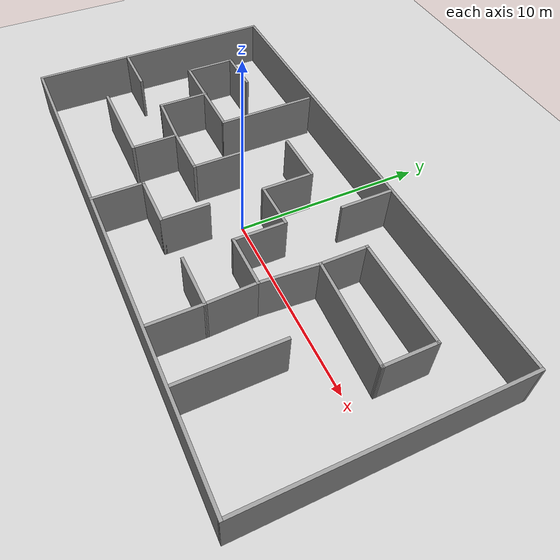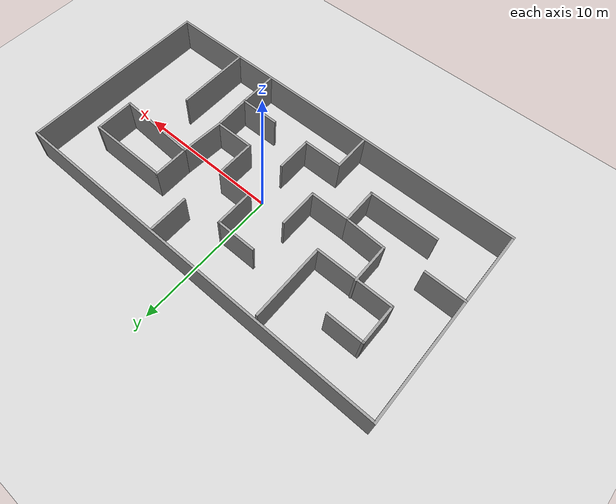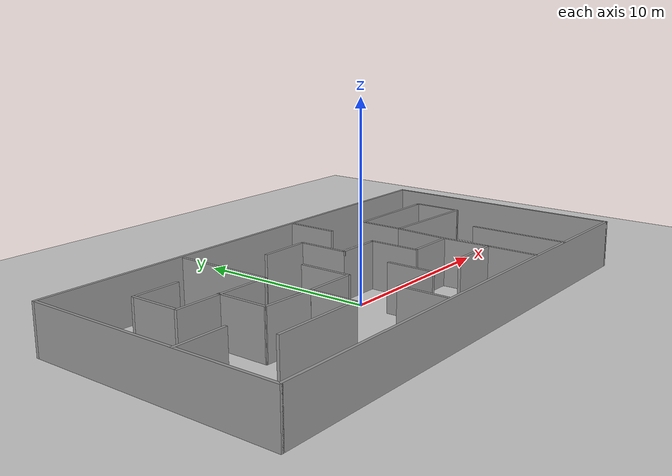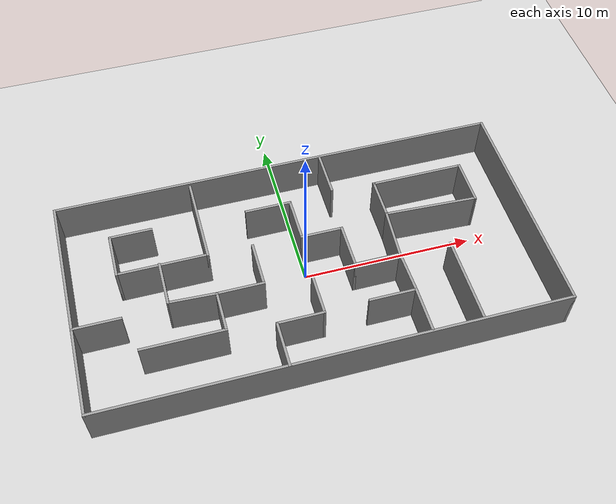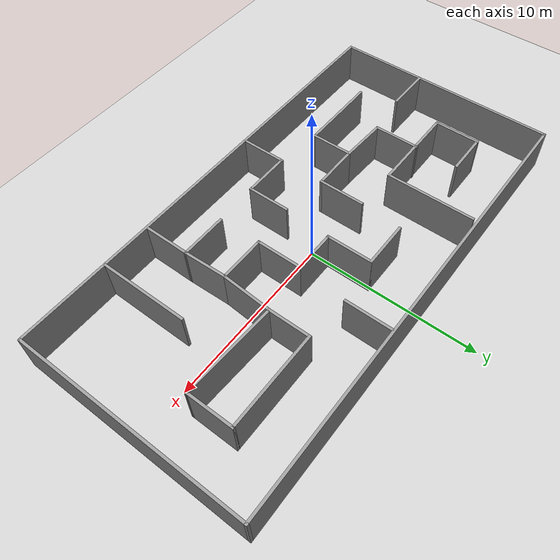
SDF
<?xml version="1.0" ?>

<sdf version="1.6">

  <world name="maze">

    <gravity>0 0 -9.81</gravity>
    <physics name="default_physics" default="0" type="ode">
      <max_step_size>0.005</max_step_size>
      <real_time_factor>0</real_time_factor>
      <real_time_update_rate>0</real_time_update_rate>
    </physics>

    <scene>
      <ambient>0.4 0.4 0.4 1</ambient>
      <background>0.7 0.7 0.7 1</background>
      <shadows>1</shadows>
    </scene>

    <gui>
      <camera name='gzclient_camera'>
        <pose>1.5 -15.5 20 0 0.9 1.6</pose>
      </camera>
    </gui>

    <!-- Light Source -->
    <include>
      <uri>model://sun</uri>
    </include>

    <!-- A ground plane -->
    <include>
      <uri>model://ground_plane</uri>
      <pose>0 0 0 0 0 0</pose>
    </include>

    <include>
      <uri>model://tricky_maze</uri>
      <pose> 0 0 0 0 0 0</pose>
    </include>

  </world>
</sdf>

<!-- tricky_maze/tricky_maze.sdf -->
<sdf version='1.7'>
  <model name='tricky_maze'>
    <pose>0.079074 0.014999 0 0 -0 0</pose>
    <link name='Wall_0'>
      <collision name='Wall_0_Collision'>
        <geometry>
          <box>
            <size>13.5 0.15 2.5</size>
          </box>
        </geometry>
        <pose>0 0 1.25 0 -0 0</pose>
      </collision>
      <visual name='Wall_0_Visual'>
        <pose>0 0 1.25 0 -0 0</pose>
        <geometry>
          <box>
            <size>13.5 0.15 2.5</size>
          </box>
        </geometry>
        <material>
          <script>
            <uri>file://media/materials/scripts/gazebo.material</uri>
            <name>Gazebo/Grey</name>
          </script>
          <ambient>1 1 1 1</ambient>
        </material>
        <meta>
          <layer>0</layer>
        </meta>
      </visual>
      <pose>-13.175 0 0 0 -0 -1.5708</pose>
    </link>
    <link name='Wall_10'>
      <collision name='Wall_10_Collision'>
        <geometry>
          <box>
            <size>5.25 0.15 2.5</size>
          </box>
        </geometry>
        <pose>0 0 1.25 0 -0 0</pose>
      </collision>
      <visual name='Wall_10_Visual'>
        <pose>0 0 1.25 0 -0 0</pose>
        <geometry>
          <box>
            <size>5.25 0.15 2.5</size>
          </box>
        </geometry>
        <material>
          <script>
            <uri>file://media/materials/scripts/gazebo.material</uri>
            <name>Gazebo/Grey</name>
          </script>
          <ambient>1 1 1 1</ambient>
        </material>
        <meta>
          <layer>0</layer>
        </meta>
      </visual>
      <pose>-7.83714 1.28357 0 0 -0 0</pose>
    </link>
    <link name='Wall_11'>
      <collision name='Wall_11_Collision'>
        <geometry>
          <box>
            <size>5.25 0.15 2.5</size>
          </box>
        </geometry>
        <pose>0 0 1.25 0 -0 0</pose>
      </collision>
      <visual name='Wall_11_Visual'>
        <pose>0 0 1.25 0 -0 0</pose>
        <geometry>
          <box>
            <size>5.25 0.15 2.5</size>
          </box>
        </geometry>
        <material>
          <script>
            <uri>file://media/materials/scripts/gazebo.material</uri>
            <name>Gazebo/Grey</name>
          </script>
          <ambient>1 1 1 1</ambient>
        </material>
        <meta>
          <layer>0</layer>
        </meta>
      </visual>
      <pose>-5.28714 3.83357 0 0 -0 1.5708</pose>
    </link>
    <link name='Wall_13'>
      <collision name='Wall_13_Collision'>
        <geometry>
          <box>
            <size>2.75 0.15 2.5</size>
          </box>
        </geometry>
        <pose>0 0 1.25 0 -0 0</pose>
      </collision>
      <visual name='Wall_13_Visual'>
        <pose>0 0 1.25 0 -0 0</pose>
        <geometry>
          <box>
            <size>2.75 0.15 2.5</size>
          </box>
        </geometry>
        <material>
          <script>
            <uri>file://media/materials/scripts/gazebo.material</uri>
            <name>Gazebo/Grey</name>
          </script>
          <ambient>1 1 1 1</ambient>
        </material>
        <meta>
          <layer>0</layer>
        </meta>
      </visual>
      <pose>-2.73746 -0.086503 0 0 -0 -1.5708</pose>
    </link>
    <link name='Wall_14'>
      <collision name='Wall_14_Collision'>
        <geometry>
          <box>
            <size>2.75 0.15 2.5</size>
          </box>
        </geometry>
        <pose>0 0 1.25 0 -0 0</pose>
      </collision>
      <visual name='Wall_14_Visual'>
        <pose>0 0 1.25 0 -0 0</pose>
        <geometry>
          <box>
            <size>2.75 0.15 2.5</size>
          </box>
        </geometry>
        <material>
          <script>
            <uri>file://media/materials/scripts/gazebo.material</uri>
            <name>Gazebo/Grey</name>
          </script>
          <ambient>1 1 1 1</ambient>
        </material>
        <meta>
          <layer>0</layer>
        </meta>
      </visual>
      <pose>-4.03746 -1.3865 0 0 -0 3.14159</pose>
    </link>
    <link name='Wall_15'>
      <collision name='Wall_15_Collision'>
        <geometry>
          <box>
            <size>2.5 0.15 2.5</size>
          </box>
        </geometry>
        <pose>0 0 1.25 0 -0 0</pose>
      </collision>
      <visual name='Wall_15_Visual'>
        <pose>0 0 1.25 0 -0 0</pose>
        <geometry>
          <box>
            <size>2.5 0.15 2.5</size>
          </box>
        </geometry>
        <material>
          <script>
            <uri>file://media/materials/scripts/gazebo.material</uri>
            <name>Gazebo/Grey</name>
          </script>
          <ambient>1 1 1 1</ambient>
        </material>
        <meta>
          <layer>0</layer>
        </meta>
      </visual>
      <pose>-5.33746 -2.5615 0 0 -0 -1.5708</pose>
    </link>
    <link name='Wall_16'>
      <collision name='Wall_16_Collision'>
        <geometry>
          <box>
            <size>4.75 0.15 2.5</size>
          </box>
        </geometry>
        <pose>0 0 1.25 0 -0 0</pose>
      </collision>
      <visual name='Wall_16_Visual'>
        <pose>0 0 1.25 0 -0 0</pose>
        <geometry>
          <box>
            <size>4.75 0.15 2.5</size>
          </box>
        </geometry>
        <material>
          <script>
            <uri>file://media/materials/scripts/gazebo.material</uri>
            <name>Gazebo/Grey</name>
          </script>
          <ambient>1 1 1 1</ambient>
        </material>
        <meta>
          <layer>0</layer>
        </meta>
      </visual>
      <pose>-7.63746 -3.7365 0 0 -0 3.14159</pose>
    </link>
    <link name='Wall_18'>
      <collision name='Wall_18_Collision'>
        <geometry>
          <box>
            <size>2.75 0.15 2.5</size>
          </box>
        </geometry>
        <pose>0 0 1.25 0 -0 0</pose>
      </collision>
      <visual name='Wall_18_Visual'>
        <pose>0 0 1.25 0 -0 0</pose>
        <geometry>
          <box>
            <size>2.75 0.15 2.5</size>
          </box>
        </geometry>
        <material>
          <script>
            <uri>file://media/materials/scripts/gazebo.material</uri>
            <name>Gazebo/Grey</name>
          </script>
          <ambient>1 1 1 1</ambient>
        </material>
        <meta>
          <layer>0</layer>
        </meta>
      </visual>
      <pose>-7.99669 0.034864 0 0 -0 -1.5708</pose>
    </link>
    <link name='Wall_19'>
      <collision name='Wall_19_Collision'>
        <geometry>
          <box>
            <size>2.81199 0.15 2.5</size>
          </box>
        </geometry>
        <pose>0 0 1.25 0 -0 0</pose>
      </collision>
      <visual name='Wall_19_Visual'>
        <pose>0 0 1.25 0 -0 0</pose>
        <geometry>
          <box>
            <size>2.81199 0.15 2.5</size>
          </box>
        </geometry>
        <material>
          <script>
            <uri>file://media/materials/scripts/gazebo.material</uri>
            <name>Gazebo/Grey</name>
          </script>
          <ambient>1 1 1 1</ambient>
        </material>
        <meta>
          <layer>0</layer>
        </meta>
      </visual>
      <pose>-6.66707 -1.32582 0 0 -0 -0.045608</pose>
    </link>
    <link name='Wall_2'>
      <collision name='Wall_2_Collision'>
        <geometry>
          <box>
            <size>26.5 0.15 2.5</size>
          </box>
        </geometry>
        <pose>0 0 1.25 0 -0 0</pose>
      </collision>
      <visual name='Wall_2_Visual'>
        <pose>0 0 1.25 0 -0 0</pose>
        <geometry>
          <box>
            <size>26.5 0.15 2.5</size>
          </box>
        </geometry>
        <material>
          <script>
            <uri>file://media/materials/scripts/gazebo.material</uri>
            <name>Gazebo/Grey</name>
          </script>
          <ambient>1 1 1 1</ambient>
        </material>
        <meta>
          <layer>0</layer>
        </meta>
      </visual>
      <pose>-0 -6.675 0 0 -0 0</pose>
    </link>
    <link name='Wall_21'>
      <collision name='Wall_21_Collision'>
        <geometry>
          <box>
            <size>2.75 0.15 2.5</size>
          </box>
        </geometry>
        <pose>0 0 1.25 0 -0 0</pose>
      </collision>
      <visual name='Wall_21_Visual'>
        <pose>0 0 1.25 0 -0 0</pose>
        <geometry>
          <box>
            <size>2.75 0.15 2.5</size>
          </box>
        </geometry>
        <material>
          <script>
            <uri>file://media/materials/scripts/gazebo.material</uri>
            <name>Gazebo/Grey</name>
          </script>
          <ambient>1 1 1 1</ambient>
        </material>
        <meta>
          <layer>0</layer>
        </meta>
      </visual>
      <pose>2.68359 5.26448 0 0 -0 1.5708</pose>
    </link>
    <link name='Wall_23'>
      <collision name='Wall_23_Collision'>
        <geometry>
          <box>
            <size>2.75 0.15 2.5</size>
          </box>
        </geometry>
        <pose>0 0 1.25 0 -0 0</pose>
      </collision>
      <visual name='Wall_23_Visual'>
        <pose>0 0 1.25 0 -0 0</pose>
        <geometry>
          <box>
            <size>2.75 0.15 2.5</size>
          </box>
        </geometry>
        <material>
          <script>
            <uri>file://media/materials/scripts/gazebo.material</uri>
            <name>Gazebo/Grey</name>
          </script>
          <ambient>1 1 1 1</ambient>
        </material>
        <meta>
          <layer>0</layer>
        </meta>
      </visual>
      <pose>-2.67105 -5.37039 0 0 -0 1.5708</pose>
    </link>
    <link name='Wall_24'>
      <collision name='Wall_24_Collision'>
        <geometry>
          <box>
            <size>2.75 0.15 2.5</size>
          </box>
        </geometry>
        <pose>0 0 1.25 0 -0 0</pose>
      </collision>
      <visual name='Wall_24_Visual'>
        <pose>0 0 1.25 0 -0 0</pose>
        <geometry>
          <box>
            <size>2.75 0.15 2.5</size>
          </box>
        </geometry>
        <material>
          <script>
            <uri>file://media/materials/scripts/gazebo.material</uri>
            <name>Gazebo/Grey</name>
          </script>
          <ambient>1 1 1 1</ambient>
        </material>
        <meta>
          <layer>0</layer>
        </meta>
      </visual>
      <pose>-1.37105 -4.07039 0 0 -0 0</pose>
    </link>
    <link name='Wall_25'>
      <collision name='Wall_25_Collision'>
        <geometry>
          <box>
            <size>2.5 0.15 2.5</size>
          </box>
        </geometry>
        <pose>0 0 1.25 0 -0 0</pose>
      </collision>
      <visual name='Wall_25_Visual'>
        <pose>0 0 1.25 0 -0 0</pose>
        <geometry>
          <box>
            <size>2.5 0.15 2.5</size>
          </box>
        </geometry>
        <material>
          <script>
            <uri>file://media/materials/scripts/gazebo.material</uri>
            <name>Gazebo/Grey</name>
          </script>
          <ambient>1 1 1 1</ambient>
        </material>
        <meta>
          <layer>0</layer>
        </meta>
      </visual>
      <pose>-0.071052 -2.89539 0 0 -0 1.5708</pose>
    </link>
    <link name='Wall_27'>
      <collision name='Wall_27_Collision'>
        <geometry>
          <box>
            <size>2.5 0.15 2.5</size>
          </box>
        </geometry>
        <pose>0 0 1.25 0 -0 0</pose>
      </collision>
      <visual name='Wall_27_Visual'>
        <pose>0 0 1.25 0 -0 0</pose>
        <geometry>
          <box>
            <size>2.5 0.15 2.5</size>
          </box>
        </geometry>
        <material>
          <script>
            <uri>file://media/materials/scripts/gazebo.material</uri>
            <name>Gazebo/Grey</name>
          </script>
          <ambient>1 1 1 1</ambient>
        </material>
        <meta>
          <layer>0</layer>
        </meta>
      </visual>
      <pose>5.2176 2.57716 0 0 -0 1.5708</pose>
    </link>
    <link name='Wall_28'>
      <collision name='Wall_28_Collision'>
        <geometry>
          <box>
            <size>5.5 0.15 2.5</size>
          </box>
        </geometry>
        <pose>0 0 1.25 0 -0 0</pose>
      </collision>
      <visual name='Wall_28_Visual'>
        <pose>0 0 1.25 0 -0 0</pose>
        <geometry>
          <box>
            <size>5.5 0.15 2.5</size>
          </box>
        </geometry>
        <material>
          <script>
            <uri>file://media/materials/scripts/gazebo.material</uri>
            <name>Gazebo/Grey</name>
          </script>
          <ambient>1 1 1 1</ambient>
        </material>
        <meta>
          <layer>0</layer>
        </meta>
      </visual>
      <pose>7.8926 3.75216 0 0 -0 0</pose>
    </link>
    <link name='Wall_3'>
      <collision name='Wall_3_Collision'>
        <geometry>
          <box>
            <size>13.5 0.15 2.5</size>
          </box>
        </geometry>
        <pose>0 0 1.25 0 -0 0</pose>
      </collision>
      <visual name='Wall_3_Visual'>
        <pose>0 0 1.25 0 -0 0</pose>
        <geometry>
          <box>
            <size>13.5 0.15 2.5</size>
          </box>
        </geometry>
        <material>
          <script>
            <uri>file://media/materials/scripts/gazebo.material</uri>
            <name>Gazebo/Grey</name>
          </script>
          <ambient>1 1 1 1</ambient>
        </material>
        <meta>
          <layer>0</layer>
        </meta>
      </visual>
      <pose>13.175 0 0 0 -0 1.5708</pose>
    </link>
    <link name='Wall_30'>
      <collision name='Wall_30_Collision'>
        <geometry>
          <box>
            <size>2.75 0.15 2.5</size>
          </box>
        </geometry>
        <pose>0 0 1.25 0 -0 0</pose>
      </collision>
      <visual name='Wall_30_Visual'>
        <pose>0 0 1.25 0 -0 0</pose>
        <geometry>
          <box>
            <size>2.75 0.15 2.5</size>
          </box>
        </geometry>
        <material>
          <script>
            <uri>file://media/materials/scripts/gazebo.material</uri>
            <name>Gazebo/Grey</name>
          </script>
          <ambient>1 1 1 1</ambient>
        </material>
        <meta>
          <layer>0</layer>
        </meta>
      </visual>
      <pose>-1.22173 3.68878 0 0 -0 0</pose>
    </link>
    <link name='Wall_31'>
      <collision name='Wall_31_Collision'>
        <geometry>
          <box>
            <size>2.75 0.15 2.5</size>
          </box>
        </geometry>
        <pose>0 0 1.25 0 -0 0</pose>
      </collision>
      <visual name='Wall_31_Visual'>
        <pose>0 0 1.25 0 -0 0</pose>
        <geometry>
          <box>
            <size>2.75 0.15 2.5</size>
          </box>
        </geometry>
        <material>
          <script>
            <uri>file://media/materials/scripts/gazebo.material</uri>
            <name>Gazebo/Grey</name>
          </script>
          <ambient>1 1 1 1</ambient>
        </material>
        <meta>
          <layer>0</layer>
        </meta>
      </visual>
      <pose>0.07827 2.38878 0 0 -0 -1.5708</pose>
    </link>
    <link name='Wall_32'>
      <collision name='Wall_32_Collision'>
        <geometry>
          <box>
            <size>2.5 0.15 2.5</size>
          </box>
        </geometry>
        <pose>0 0 1.25 0 -0 0</pose>
      </collision>
      <visual name='Wall_32_Visual'>
        <pose>0 0 1.25 0 -0 0</pose>
        <geometry>
          <box>
            <size>2.5 0.15 2.5</size>
          </box>
        </geometry>
        <material>
          <script>
            <uri>file://media/materials/scripts/gazebo.material</uri>
            <name>Gazebo/Grey</name>
          </script>
          <ambient>1 1 1 1</ambient>
        </material>
        <meta>
          <layer>0</layer>
        </meta>
      </visual>
      <pose>1.25327 1.08878 0 0 -0 0</pose>
    </link>
    <link name='Wall_33'>
      <collision name='Wall_33_Collision'>
        <geometry>
          <box>
            <size>2.75 0.15 2.5</size>
          </box>
        </geometry>
        <pose>0 0 1.25 0 -0 0</pose>
      </collision>
      <visual name='Wall_33_Visual'>
        <pose>0 0 1.25 0 -0 0</pose>
        <geometry>
          <box>
            <size>2.75 0.15 2.5</size>
          </box>
        </geometry>
        <material>
          <script>
            <uri>file://media/materials/scripts/gazebo.material</uri>
            <name>Gazebo/Grey</name>
          </script>
          <ambient>1 1 1 1</ambient>
        </material>
        <meta>
          <layer>0</layer>
        </meta>
      </visual>
      <pose>2.42827 -0.211222 0 0 -0 -1.5708</pose>
    </link>
    <link name='Wall_34'>
      <collision name='Wall_34_Collision'>
        <geometry>
          <box>
            <size>2.75 0.15 2.5</size>
          </box>
        </geometry>
        <pose>0 0 1.25 0 -0 0</pose>
      </collision>
      <visual name='Wall_34_Visual'>
        <pose>0 0 1.25 0 -0 0</pose>
        <geometry>
          <box>
            <size>2.75 0.15 2.5</size>
          </box>
        </geometry>
        <material>
          <script>
            <uri>file://media/materials/scripts/gazebo.material</uri>
            <name>Gazebo/Grey</name>
          </script>
          <ambient>1 1 1 1</ambient>
        </material>
        <meta>
          <layer>0</layer>
        </meta>
      </visual>
      <pose>3.72827 -1.51122 0 0 -0 0</pose>
    </link>
    <link name='Wall_36'>
      <collision name='Wall_36_Collision'>
        <geometry>
          <box>
            <size>2.75 0.15 2.5</size>
          </box>
        </geometry>
        <pose>0 0 1.25 0 -0 0</pose>
      </collision>
      <visual name='Wall_36_Visual'>
        <pose>0 0 1.25 0 -0 0</pose>
        <geometry>
          <box>
            <size>2.75 0.15 2.5</size>
          </box>
        </geometry>
        <material>
          <script>
            <uri>file://media/materials/scripts/gazebo.material</uri>
            <name>Gazebo/Grey</name>
          </script>
          <ambient>1 1 1 1</ambient>
        </material>
        <meta>
          <layer>0</layer>
        </meta>
      </visual>
      <pose>3.80883 -3.98019 0 0 -0 0</pose>
    </link>
    <link name='Wall_37'>
      <collision name='Wall_37_Collision'>
        <geometry>
          <box>
            <size>2.62028 0.15 2.5</size>
          </box>
        </geometry>
        <pose>0 0 1.25 0 -0 0</pose>
      </collision>
      <visual name='Wall_37_Visual'>
        <pose>0 0 1.25 0 -0 0</pose>
        <geometry>
          <box>
            <size>2.62028 0.15 2.5</size>
          </box>
        </geometry>
        <material>
          <script>
            <uri>file://media/materials/scripts/gazebo.material</uri>
            <name>Gazebo/Grey</name>
          </script>
          <ambient>1 1 1 1</ambient>
        </material>
        <meta>
          <layer>0</layer>
        </meta>
      </visual>
      <pose>5.06855 -2.74571 0 0 -0 1.60342</pose>
    </link>
    <link name='Wall_39'>
      <collision name='Wall_39_Collision'>
        <geometry>
          <box>
            <size>2.75 0.15 2.5</size>
          </box>
        </geometry>
        <pose>0 0 1.25 0 -0 0</pose>
      </collision>
      <visual name='Wall_39_Visual'>
        <pose>0 0 1.25 0 -0 0</pose>
        <geometry>
          <box>
            <size>2.75 0.15 2.5</size>
          </box>
        </geometry>
        <material>
          <script>
            <uri>file://media/materials/scripts/gazebo.material</uri>
            <name>Gazebo/Grey</name>
          </script>
          <ambient>1 1 1 1</ambient>
        </material>
        <meta>
          <layer>0</layer>
        </meta>
      </visual>
      <pose>5.10883 -5.28019 0 0 -0 -1.5708</pose>
    </link>
    <link name='Wall_4'>
      <collision name='Wall_4_Collision'>
        <geometry>
          <box>
            <size>26.5 0.15 2.5</size>
          </box>
        </geometry>
        <pose>0 0 1.25 0 -0 0</pose>
      </collision>
      <visual name='Wall_4_Visual'>
        <pose>0 0 1.25 0 -0 0</pose>
        <geometry>
          <box>
            <size>26.5 0.15 2.5</size>
          </box>
        </geometry>
        <material>
          <script>
            <uri>file://media/materials/scripts/gazebo.material</uri>
            <name>Gazebo/Grey</name>
          </script>
          <ambient>1 1 1 1</ambient>
        </material>
        <meta>
          <layer>0</layer>
        </meta>
      </visual>
      <pose>-0 6.675 0 0 -0 3.14159</pose>
    </link>
    <link name='Wall_41'>
      <collision name='Wall_41_Collision'>
        <geometry>
          <box>
            <size>5.25 0.15 2.5</size>
          </box>
        </geometry>
        <pose>0 0 1.25 0 -0 0</pose>
      </collision>
      <visual name='Wall_41_Visual'>
        <pose>0 0 1.25 0 -0 0</pose>
        <geometry>
          <box>
            <size>5.25 0.15 2.5</size>
          </box>
        </geometry>
        <material>
          <script>
            <uri>file://media/materials/scripts/gazebo.material</uri>
            <name>Gazebo/Grey</name>
          </script>
          <ambient>1 1 1 1</ambient>
        </material>
        <meta>
          <layer>0</layer>
        </meta>
      </visual>
      <pose>7.99672 -4.10378 0 0 -0 1.5708</pose>
    </link>
    <link name='Wall_43'>
      <collision name='Wall_43_Collision'>
        <geometry>
          <box>
            <size>2.75 0.15 2.5</size>
          </box>
        </geometry>
        <pose>0 0 1.25 0 -0 0</pose>
      </collision>
      <visual name='Wall_43_Visual'>
        <pose>0 0 1.25 0 -0 0</pose>
        <geometry>
          <box>
            <size>2.75 0.15 2.5</size>
          </box>
        </geometry>
        <material>
          <script>
            <uri>file://media/materials/scripts/gazebo.material</uri>
            <name>Gazebo/Grey</name>
          </script>
          <ambient>1 1 1 1</ambient>
        </material>
        <meta>
          <layer>0</layer>
        </meta>
      </visual>
      <pose>10.5676 2.45216 0 0 -0 -1.5708</pose>
    </link>
    <link name='Wall_44'>
      <collision name='Wall_44_Collision'>
        <geometry>
          <box>
            <size>5.50584 0.15 2.5</size>
          </box>
        </geometry>
        <pose>0 0 1.25 0 -0 0</pose>
      </collision>
      <visual name='Wall_44_Visual'>
        <pose>0 0 1.25 0 -0 0</pose>
        <geometry>
          <box>
            <size>5.50584 0.15 2.5</size>
          </box>
        </geometry>
        <material>
          <script>
            <uri>file://media/materials/scripts/gazebo.material</uri>
            <name>Gazebo/Grey</name>
          </script>
          <ambient>1 1 1 1</ambient>
        </material>
        <meta>
          <layer>0</layer>
        </meta>
      </visual>
      <pose>7.8926 1.27716 0 0 -0 3.0949</pose>
    </link>
    <link name='Wall_45'>
      <collision name='Wall_45_Collision'>
        <geometry>
          <box>
            <size>3.06953 0.15 2.5</size>
          </box>
        </geometry>
        <pose>0 0 1.25 0 -0 0</pose>
      </collision>
      <visual name='Wall_45_Visual'>
        <pose>0 0 1.25 0 -0 0</pose>
        <geometry>
          <box>
            <size>3.06953 0.15 2.5</size>
          </box>
        </geometry>
        <material>
          <script>
            <uri>file://media/materials/scripts/gazebo.material</uri>
            <name>Gazebo/Grey</name>
          </script>
          <ambient>1 1 1 1</ambient>
        </material>
        <meta>
          <layer>0</layer>
        </meta>
      </visual>
      <pose>5.12293 -0.054531 0 0 -0 -1.63569</pose>
    </link>
    <link name='Wall_6'>
      <collision name='Wall_6_Collision'>
        <geometry>
          <box>
            <size>2.75 0.15 2.5</size>
          </box>
        </geometry>
        <pose>0 0 1.25 0 -0 0</pose>
      </collision>
      <visual name='Wall_6_Visual'>
        <pose>0 0 1.25 0 -0 0</pose>
        <geometry>
          <box>
            <size>2.75 0.15 2.5</size>
          </box>
        </geometry>
        <material>
          <script>
            <uri>file://media/materials/scripts/gazebo.material</uri>
            <name>Gazebo/Grey</name>
          </script>
          <ambient>1 1 1 1</ambient>
        </material>
        <meta>
          <layer>0</layer>
        </meta>
      </visual>
      <pose>-11.875 -1.57794 0 0 -0 0</pose>
    </link>
    <link name='Wall_8'>
      <collision name='Wall_8_Collision'>
        <geometry>
          <box>
            <size>2.5 0.15 2.5</size>
          </box>
        </geometry>
        <pose>0 0 1.25 0 -0 0</pose>
      </collision>
      <visual name='Wall_8_Visual'>
        <pose>0 0 1.25 0 -0 0</pose>
        <geometry>
          <box>
            <size>2.5 0.15 2.5</size>
          </box>
        </geometry>
        <material>
          <script>
            <uri>file://media/materials/scripts/gazebo.material</uri>
            <name>Gazebo/Grey</name>
          </script>
          <ambient>1 1 1 1</ambient>
        </material>
        <meta>
          <layer>0</layer>
        </meta>
      </visual>
      <pose>-9.21214 3.88356 0 0 -0 3.14159</pose>
    </link>
    <link name='Wall_9'>
      <collision name='Wall_9_Collision'>
        <geometry>
          <box>
            <size>2.75 0.15 2.5</size>
          </box>
        </geometry>
        <pose>0 0 1.25 0 -0 0</pose>
      </collision>
      <visual name='Wall_9_Visual'>
        <pose>0 0 1.25 0 -0 0</pose>
        <geometry>
          <box>
            <size>2.75 0.15 2.5</size>
          </box>
        </geometry>
        <material>
          <script>
            <uri>file://media/materials/scripts/gazebo.material</uri>
            <name>Gazebo/Grey</name>
          </script>
          <ambient>1 1 1 1</ambient>
        </material>
        <meta>
          <layer>0</layer>
        </meta>
      </visual>
      <pose>-10.3871 2.58357 0 0 -0 -1.5708</pose>
    </link>
    <static>1</static>
  </model>
</sdf>
